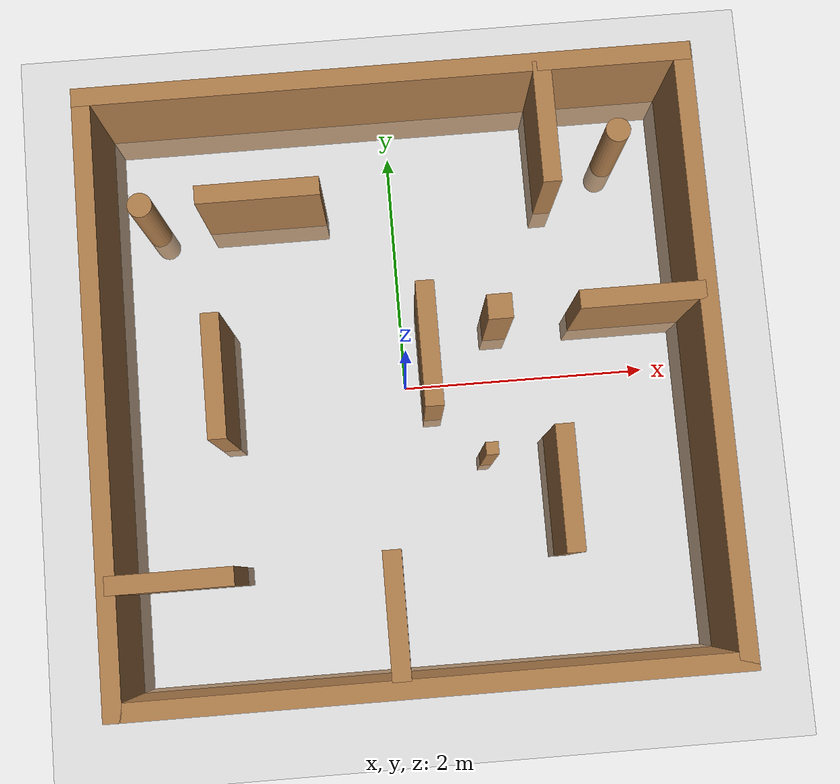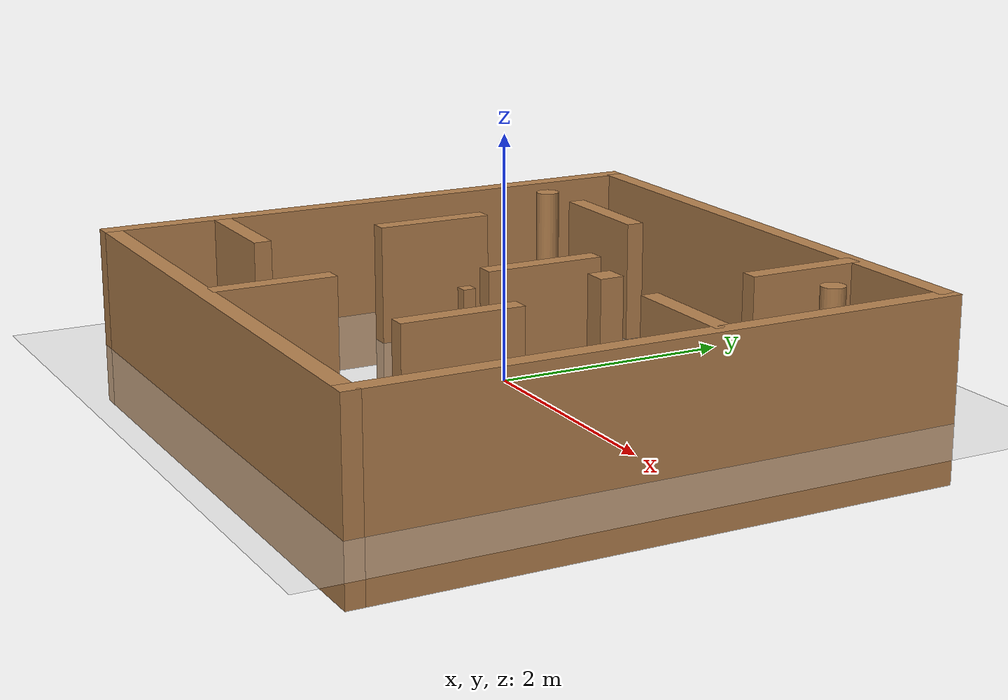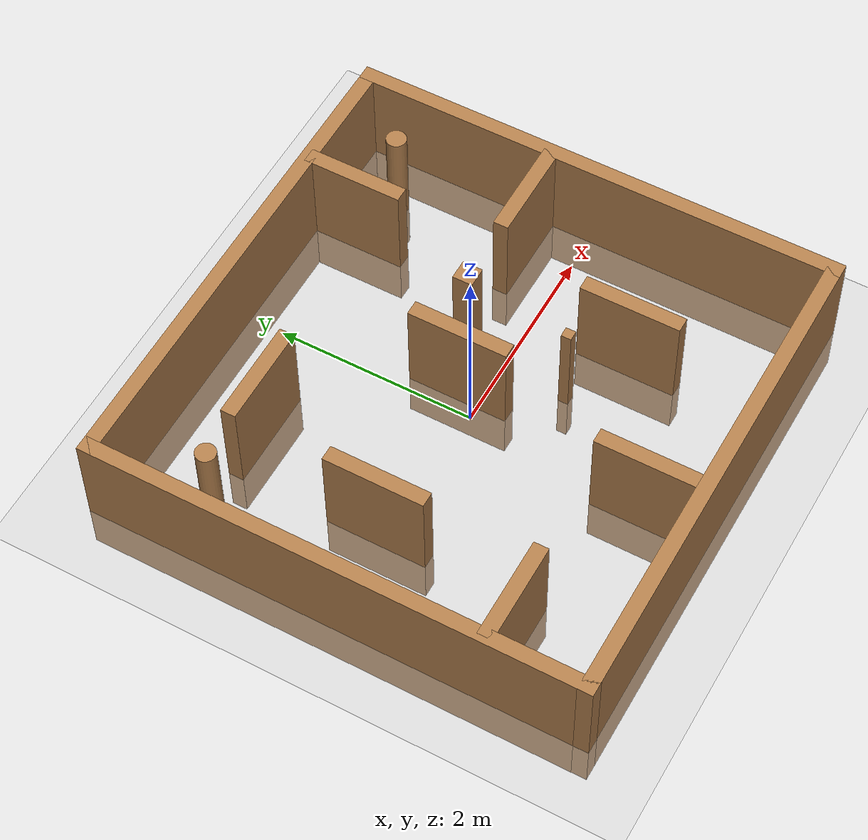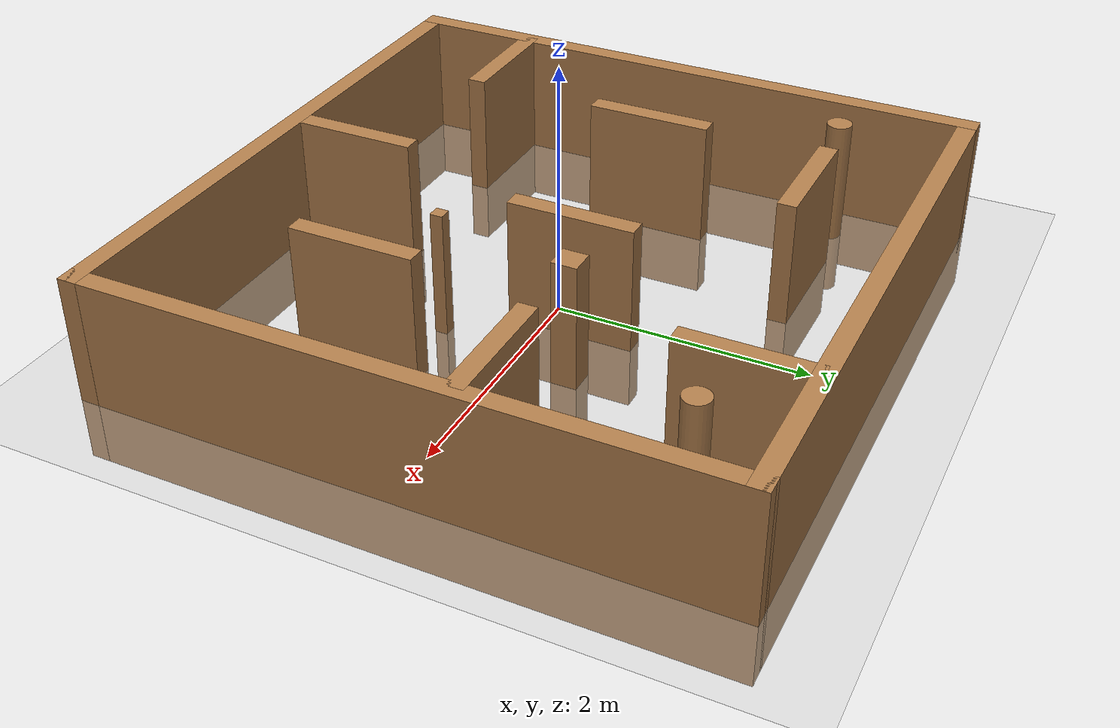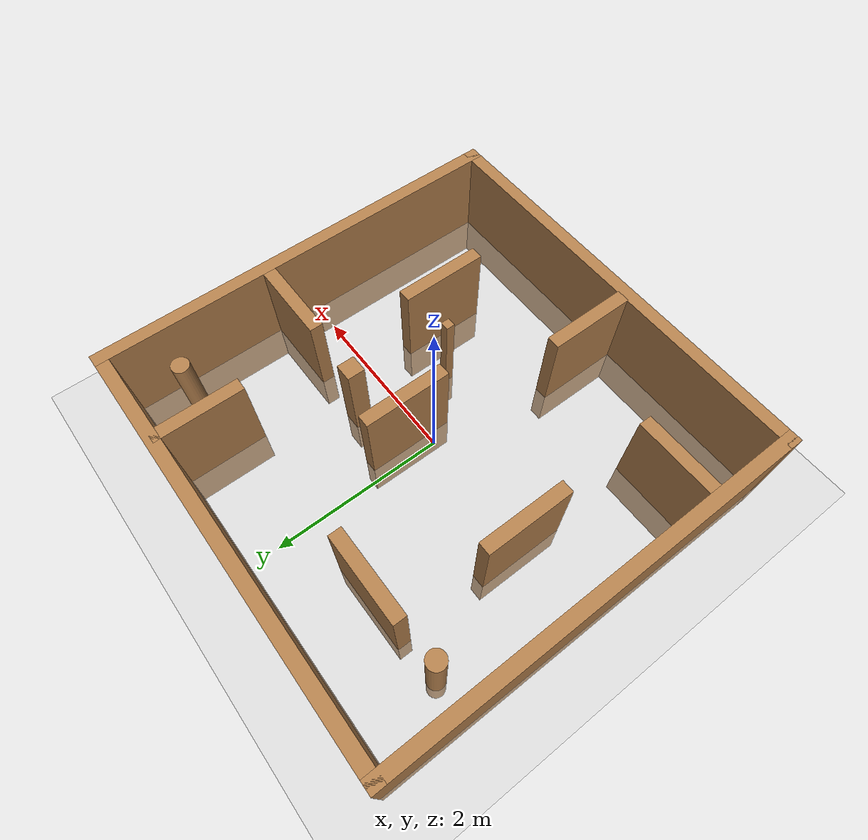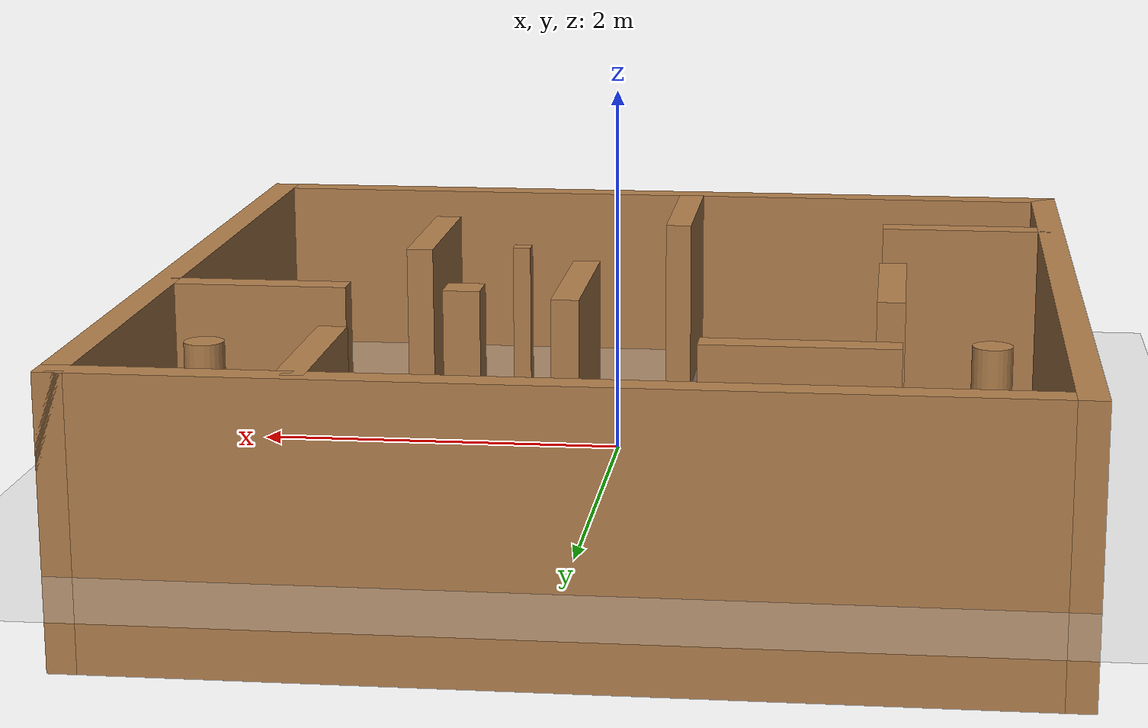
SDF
<sdf version="1.4">
 <world name="default">
  <scene><ambient>0.4 0.4 0.4 1</ambient><background>0.7 0.7 0.7 1</background><shadows>false</shadows></scene>
  <include><uri>model://sun</uri></include>
  <include><uri>model://ground_plane</uri></include>
  <physics type="ode">
   <real_time_update_rate>1000.0</real_time_update_rate>
   <max_step_size>0.001</max_step_size>
   <real_time_factor>1</real_time_factor>
   <ode>
    <solver>
     <type>quick</type>
     <iters>150</iters>
     <precon_iters>0</precon_iters>
     <sor>1.400000</sor>
     <use_dynamic_moi_rescaling>1</use_dynamic_moi_rescaling>
    </solver>
    <constraints>
     <cfm>0.00001</cfm>
     <erp>0.2</erp>
     <contact_max_correcting_vel>2000.000000</contact_max_correcting_vel>
     <contact_surface_layer>0.01000</contact_surface_layer>
    </constraints>
   </ode>
  </physics>
  <include><uri>model://my_world</uri></include>
  <scene><ambient>0.4 0.4 0.4 1</ambient><background>0.7 0.7 0.7 1</background><shadows>true</shadows></scene>
 </world>
</sdf>

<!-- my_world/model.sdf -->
<sdf version='1.6'>
  <model name='my_plaza'>
    <pose frame=''>0 0 0 0 -0 0</pose>

    <link name='Cylinder_0'>
      <collision name='Cylinder_0_Collision'>
        <geometry>
		<cylinder>
		  <length>1.5</length>
		  <radius>0.1</radius>
		</cylinder>
        </geometry>
        <pose frame=''>0 0 0.25 0 -0 0</pose>
      </collision>
      <visual name='Cylinder_0_Visual'>
        <pose frame=''>0 0 0.25 0 -0 0</pose>
        <geometry>
		<cylinder>
		  <length>1.5</length>
		  <radius>0.1</radius>
		</cylinder>
        </geometry>
        <material>
          <script>
            <uri>file://media/materials/scripts/gazebo.material</uri>
            <name>Gazebo/Wood</name>
          </script>
          <ambient>1 1 1 1</ambient>
        </material>
      </visual>
      <pose frame=''>-2 1.5 0 0 0 0</pose>
    </link>

    <link name='Cylinder_1'>
      <collision name='Cylinder_1_Collision'>
        <geometry>
		<cylinder>
		  <length>1.5</length>
		  <radius>0.1</radius>
		</cylinder>
        </geometry>
        <pose frame=''>0 0 0.25 0 -0 0</pose>
      </collision>
      <visual name='Cylinder_0_Visual'>
        <pose frame=''>0 0 0.25 0 -0 0</pose>
        <geometry>
		<cylinder>
		  <length>1.5</length>
		  <radius>0.1</radius>
		</cylinder>
        </geometry>
        <material>
          <script>
            <uri>file://media/materials/scripts/gazebo.material</uri>
            <name>Gazebo/Wood</name>
          </script>
          <ambient>1 1 1 1</ambient>
        </material>
      </visual>
      <pose frame=''>1.85 1.81 0 0 0 0</pose>
    </link>

 <link name='Box_0'>
      <collision name='Box_0_Collision'>
        <geometry>
          <box>
            <size>0.2 0.2 1.5</size>
          </box>
        </geometry>
        <pose frame=''>0 0 0.25 0 -0 0</pose>
      </collision>
      <visual name='Box_0_Visual'>
        <pose frame=''>0 0 0.25 0 -0 0</pose>
        <geometry>
          <box>
            <size>0.2 0.2 1.5</size>
          </box>
        </geometry>
        <material>
          <script>
            <uri>file://media/materials/scripts/gazebo.material</uri>
            <name>Gazebo/Wood</name>
          </script>
          <ambient>1 1 1 1</ambient>
        </material>
      </visual>
      <pose frame=''>0.78 0.46 0 0 0 0</pose>
    </link>

 <link name='Box_1'>
      <collision name='Box_1_Collision'>
        <geometry>
          <box>
            <size>0.1 0.1 1.5</size>
          </box>
        </geometry>
        <pose frame=''>0 0 0.25 0 -0 0</pose>
      </collision>
      <visual name='Box_1_Visual'>
        <pose frame=''>0 0 0.25 0 -0 0</pose>
        <geometry>
          <box>
            <size>0.1 0.1 1.5</size>
          </box>
        </geometry>
        <material>
          <script>
            <uri>file://media/materials/scripts/gazebo.material</uri>
            <name>Gazebo/Wood</name>
          </script>
          <ambient>1 1 1 1</ambient>
        </material>
      </visual>
      <pose frame=''>0.62 -0.65 0 0 0 0</pose>
    </link>

    <link name='Wall_0'>
      <collision name='Wall_0_Collision'>
        <geometry>
          <box>
            <size>5 0.15 1.5</size>
          </box>
        </geometry>
        <pose frame=''>0 0 0.25 0 -0 0</pose>
      </collision>
      <visual name='Wall_0_Visual'>
        <pose frame=''>0 0 0.25 0 -0 0</pose>
        <geometry>
          <box>
            <size>5 0.15 1.5</size>
          </box>
        </geometry>
        <material>
          <script>
            <uri>file://media/materials/scripts/gazebo.material</uri>
            <name>Gazebo/Wood</name>
          </script>
          <ambient>1 1 1 1</ambient>
        </material>
      </visual>
      <pose frame=''>-2.425 0 0 0 -0 1.5708</pose>
    </link>
    <link name='Wall_11'>
      <collision name='Wall_11_Collision'>
        <geometry>
          <box>
            <size>1 0.15 1.5</size>
          </box>
        </geometry>
        <pose frame=''>0 0 0.25 0 -0 0</pose>
      </collision>
      <visual name='Wall_11_Visual'>
        <pose frame=''>0 0 0.25 0 -0 0</pose>
        <geometry>
          <box>
            <size>1 0.15 1.5</size>
          </box>
        </geometry>
        <material>
          <script>
            <uri>file://media/materials/scripts/gazebo.material</uri>
            <name>Gazebo/Wood</name>
          </script>
          <ambient>1 1 1 1</ambient>
        </material>
      </visual>
      <pose frame=''>-1.937 -1.467 0 0 -0 0</pose>
    </link>
    <link name='Wall_13'>
      <collision name='Wall_13_Collision'>
        <geometry>
          <box>
            <size>1 0.15 1.5</size>
          </box>
        </geometry>
        <pose frame=''>0 0 0.25 0 -0 0</pose>
      </collision>
      <visual name='Wall_13_Visual'>
        <pose frame=''>0 0 0.25 0 -0 0</pose>
        <geometry>
          <box>
            <size>1 0.15 1.5</size>
          </box>
        </geometry>
        <material>
          <script>
            <uri>file://media/materials/scripts/gazebo.material</uri>
            <name>Gazebo/Wood</name>
          </script>
          <ambient>1 1 1 1</ambient>
        </material>
      </visual>
      <pose frame=''>-0.22 -1.866 0 0 0 -1.5708</pose>
    </link>
    <link name='Wall_15'>
      <collision name='Wall_15_Collision'>
        <geometry>
          <box>
            <size>1 0.15 1.5</size>
          </box>
        </geometry>
        <pose frame=''>0 0 0.25 0 -0 0</pose>
      </collision>
      <visual name='Wall_15_Visual'>
        <pose frame=''>0 0 0.25 0 -0 0</pose>
        <geometry>
          <box>
            <size>1 0.15 1.5</size>
          </box>
        </geometry>
        <material>
          <script>
            <uri>file://media/materials/scripts/gazebo.material</uri>
            <name>Gazebo/Wood</name>
          </script>
          <ambient>1 1 1 1</ambient>
        </material>
      </visual>
      <pose frame=''>1.195 -1.002 0 0 -0 1.5708</pose>
    </link>
    <link name='Wall_17'>
      <collision name='Wall_17_Collision'>
        <geometry>
          <box>
            <size>1 0.15 1.5</size>
          </box>
        </geometry>
        <pose frame=''>0 0 0.25 0 -0 0</pose>
      </collision>
      <visual name='Wall_17_Visual'>
        <pose frame=''>0 0 0.25 0 -0 0</pose>
        <geometry>
          <box>
            <size>1 0.15 1.5</size>
          </box>
        </geometry>
        <material>
          <script>
            <uri>file://media/materials/scripts/gazebo.material</uri>
            <name>Gazebo/Wood</name>
          </script>
          <ambient>1 1 1 1</ambient>
        </material>
      </visual>
      <pose frame=''>1.288 1.93 0 0 0 -1.5708</pose>
    </link>
    <link name='Wall_19'>
      <collision name='Wall_19_Collision'>
        <geometry>
          <box>
            <size>1 0.15 1.5</size>
          </box>
        </geometry>
        <pose frame=''>0 0 0.25 0 -0 0</pose>
      </collision>
      <visual name='Wall_19_Visual'>
        <pose frame=''>0 0 0.25 0 -0 0</pose>
        <geometry>
          <box>
            <size>1 0.15 1.5</size>
          </box>
        </geometry>
        <material>
          <script>
            <uri>file://media/materials/scripts/gazebo.material</uri>
            <name>Gazebo/Wood</name>
          </script>
          <ambient>1 1 1 1</ambient>
        </material>
      </visual>
      <pose frame=''>1.91128 0.4632 0 0 -0 0</pose>
    </link>
    <link name='Wall_2'>
      <collision name='Wall_2_Collision'>
        <geometry>
          <box>
            <size>5 0.15 1.5</size>
          </box>
        </geometry>
        <pose frame=''>0 0 0.25 0 -0 0</pose>
      </collision>
      <visual name='Wall_2_Visual'>
        <pose frame=''>0 0 0.25 0 -0 0</pose>
        <geometry>
          <box>
            <size>5 0.15 1.5</size>
          </box>
        </geometry>
        <material>
          <script>
            <uri>file://media/materials/scripts/gazebo.material</uri>
            <name>Gazebo/Wood</name>
          </script>
          <ambient>1 1 1 1</ambient>
        </material>
      </visual>
      <pose frame=''>0 2.425 0 0 -0 0</pose>
    </link>
    <link name='Wall_21'>
      <collision name='Wall_21_Collision'>
        <geometry>
          <box>
            <size>1 0.15 1.5</size>
          </box>
        </geometry>
        <pose frame=''>0 0 0.25 0 -0 0</pose>
      </collision>
      <visual name='Wall_21_Visual'>
        <pose frame=''>0 0 0.25 0 -0 0</pose>
        <geometry>
          <box>
            <size>1 0.15 1.5</size>
          </box>
        </geometry>
        <material>
          <script>
            <uri>file://media/materials/scripts/gazebo.material</uri>
            <name>Gazebo/Wood</name>
          </script>
          <ambient>1 1 1 1</ambient>
        </material>
      </visual>
      <pose frame=''>0.204 0.215 0 0 0 -1.5708</pose>
    </link>
    <link name='Wall_3'>
      <collision name='Wall_3_Collision'>
        <geometry>
          <box>
            <size>5 0.15 1.5</size>
          </box>
        </geometry>
        <pose frame=''>0 0 0.25 0 -0 0</pose>
      </collision>
      <visual name='Wall_3_Visual'>
        <pose frame=''>0 0 0.25 0 -0 0</pose>
        <geometry>
          <box>
            <size>5 0.15 1.5</size>
          </box>
        </geometry>
        <material>
          <script>
            <uri>file://media/materials/scripts/gazebo.material</uri>
            <name>Gazebo/Wood</name>
          </script>
          <ambient>1 1 1 1</ambient>
        </material>
      </visual>
      <pose frame=''>2.425 0 0 0 0 -1.5708</pose>
    </link>
    <link name='Wall_4'>
      <collision name='Wall_4_Collision'>
        <geometry>
          <box>
            <size>5 0.15 1.5</size>
          </box>
        </geometry>
        <pose frame=''>0 0 0.25 0 -0 0</pose>
      </collision>
      <visual name='Wall_4_Visual'>
        <pose frame=''>0 0 0.25 0 -0 0</pose>
        <geometry>
          <box>
            <size>5 0.15 1.5</size>
          </box>
        </geometry>
        <material>
          <script>
            <uri>file://media/materials/scripts/gazebo.material</uri>
            <name>Gazebo/Wood</name>
          </script>
          <ambient>1 1 1 1</ambient>
        </material>
      </visual>
      <pose frame=''>0 -2.425 0 0 -0 3.14159</pose>
    </link>
    <link name='Wall_7'>
      <collision name='Wall_7_Collision'>
        <geometry>
          <box>
            <size>1 0.15 1.5</size>
          </box>
        </geometry>
        <pose frame=''>0 0 0.25 0 -0 0</pose>
      </collision>
      <visual name='Wall_7_Visual'>
        <pose frame=''>0 0 0.25 0 -0 0</pose>
        <geometry>
          <box>
            <size>1 0.15 1.5</size>
          </box>
        </geometry>
        <material>
          <script>
            <uri>file://media/materials/scripts/gazebo.material</uri>
            <name>Gazebo/Wood</name>
          </script>
          <ambient>1 1 1 1</ambient>
        </material>
      </visual>
      <pose frame=''>-1.064 1.548 0 0 -0 0</pose>
    </link>
    <link name='Wall_9'>
      <collision name='Wall_9_Collision'>
        <geometry>
          <box>
            <size>1 0.15 1.5</size>
          </box>
        </geometry>
        <pose frame=''>0 0 0.25 0 -0 0</pose>
      </collision>
      <visual name='Wall_9_Visual'>
        <pose frame=''>0 0 0.25 0 -0 0</pose>
        <geometry>
          <box>
            <size>1 0.15 1.5</size>
          </box>
        </geometry>
        <material>
          <script>
            <uri>file://media/materials/scripts/gazebo.material</uri>
            <name>Gazebo/Wood</name>
          </script>
          <ambient>1 1 1 1</ambient>
        </material>
      </visual>
      <pose frame=''>-1.502 0.092 0 0 0 -1.5708</pose>
    </link>
    <static>1</static>
  </model>
</sdf>
